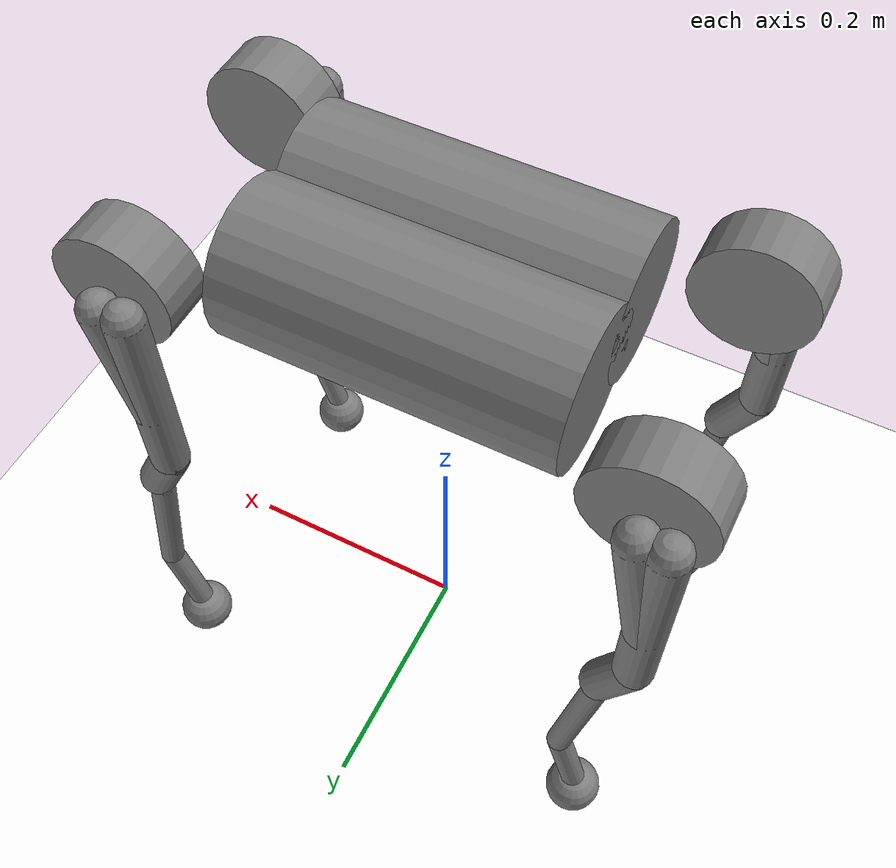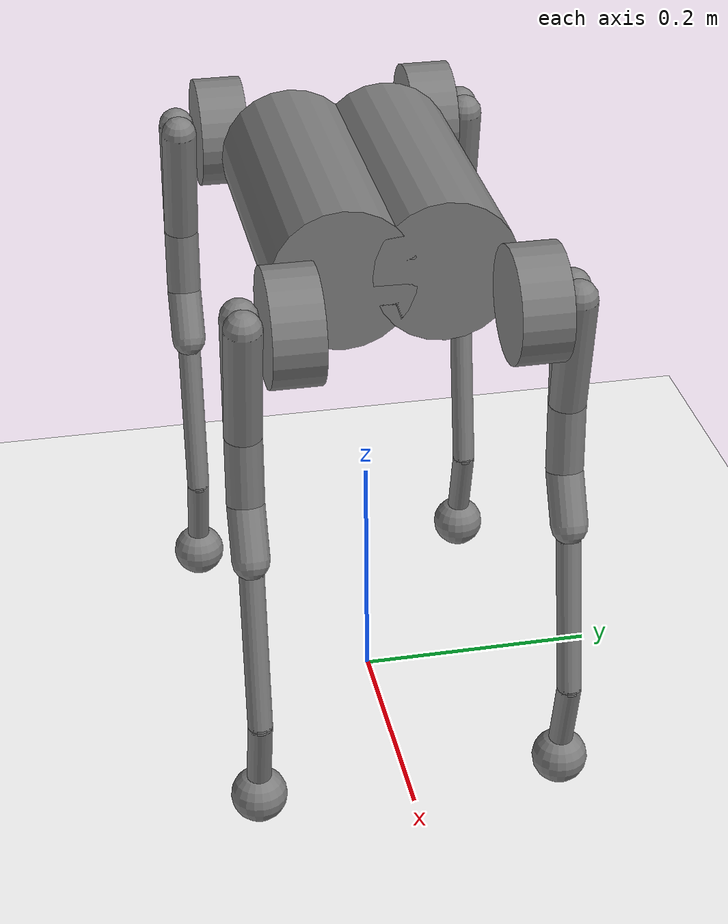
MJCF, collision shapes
<mujoco model="go1 scene">
  <compiler angle="radian" meshdir="../assets/"/>

  <option timestep="0.004" iterations="1" ls_iterations="5">
    <flag eulerdamp="disable"/>
  </option>

  <size nkey="5"/>

  <visual>
    <global azimuth="120" elevation="-20"/>
    <quality shadowsize="8192"/>
    <headlight ambient="0.2 0.2 0.2" diffuse="0.8 0.8 0.8" specular="1 1 1"/>
    <map force="0.01"/>
    <scale forcewidth="0.3" contactwidth="0.5" contactheight="0.2"/>
    <rgba force="1 0 0 1"/>
  </visual>

  <statistic meansize="0.04" extent="0.8" center="0 0 0.1"/>

  <default>
    <default class="go1">
      <joint armature="0.005" damping="0.5"/>
      <geom condim="1"/>
      <general forcerange="-23.7 23.7" biastype="affine" gainprm="35" biasprm="0 -35"/>
      <default class="abduction">
        <joint range="-0.863 0.863" frictionloss="0.3"/>
      </default>
      <default class="hip">
        <joint range="-0.686 4.501" frictionloss="0.3"/>
      </default>
      <default class="knee">
        <joint range="-2.818 -0.888" frictionloss="1"/>
        <general forcerange="-35.55 35.55"/>
      </default>
      <default class="visual">
        <geom type="mesh" contype="0" conaffinity="0" group="2" material="dark"/>
      </default>
      <default class="collision">
        <geom type="capsule" group="3"/>
        <default class="hip_left1">
          <geom size="0.046 0.02 0" type="cylinder"/>
        </default>
        <default class="hip_left2">
          <geom size="0.031 0.02 0" type="cylinder"/>
        </default>
        <default class="hip_left3">
          <geom size="0.046 0.02 0" type="cylinder"/>
        </default>
        <default class="hip_right1">
          <geom size="0.046 0.02 0" type="cylinder"/>
        </default>
        <default class="hip_right2">
          <geom size="0.031 0.02 0" type="cylinder"/>
        </default>
        <default class="hip_right3">
          <geom size="0.046 0.02 0" type="cylinder"/>
        </default>
        <default class="thigh1">
          <geom size="0.015 0 0"/>
        </default>
        <default class="thigh2">
          <geom size="0.015 0 0"/>
        </default>
        <default class="thigh3">
          <geom size="0.015 0 0"/>
        </default>
        <default class="calf1">
          <geom size="0.01 0 0"/>
        </default>
        <default class="calf2">
          <geom size="0.01 0 0"/>
        </default>
        <default class="foot">
          <geom size="0.023 0 0" type="sphere" condim="3" solimp="0.9 0.95 0.023"/>
        </default>
      </default>
    </default>
  </default>

  <custom>
    <numeric name="max_contact_points" size="1" data="30"/>
    <numeric name="max_geom_pairs" size="1" data="12"/>
  </custom>

  <asset>
    <texture type="skybox" builtin="gradient" rgb1="1 1 1" rgb2="1 1 1" width="800" height="4800"/>
    <texture type="2d" name="groundplane" builtin="checker" mark="edge" rgb1="1 1 1" rgb2="1 1 1" width="300" height="300"/>
    <material name="dark" rgba="0.2 0.2 0.2 1"/>
    <material name="groundplane" texture="groundplane" texuniform="true" texrepeat="5 5"/>
    <mesh name="trunk" class="go1" content_type="model/stl" file="trunk.stl"/>
    <mesh name="hip" class="go1" content_type="model/stl" file="hip.stl"/>
    <mesh name="thigh_mirror" class="go1" content_type="model/stl" file="thigh_mirror.stl"/>
    <mesh name="calf" class="go1" content_type="model/stl" file="calf.stl"/>
    <mesh name="thigh" class="go1" content_type="model/stl" file="thigh.stl"/>
  </asset>

  <worldbody>
    <geom name="floor" size="0 0 0.01" type="plane" conaffinity="0" priority="1" friction="0.6" material="groundplane"/>
    <light name="spotlight" target="trunk" pos="3 0 4" dir="0 0 -1" mode="targetbodycom"/>
    <body name="trunk" childclass="go1" pos="0 0 0.445">
      <inertial pos="0.0223 0.002 -0.0005" quat="-0.00342088 0.705204 0.000106698 0.708996" mass="5.204" diaginertia="0.0716565 0.0630105 0.0168101"/>
      <joint type="free" limited="false" actuatorfrclimited="false" armature="0" damping="0"/>
      <geom class="visual" mesh="trunk"/>
      <geom class="collision" size="0.058 0.125" pos="0 -0.04 0" quat="0.707107 0 0.707107 0" type="cylinder"/>
      <geom class="collision" size="0.058 0.125" pos="0 0.04 0" quat="0.707107 0 0.707107 0" type="cylinder"/>
      <site name="head" pos="0.3 0 0" size="0.02" group="5" rgba="1 0 0 1"/>
      <site name="imu" pos="-0.01592 -0.06659 -0.00617" group="5"/>
      <camera name="track" pos="0.846 -1.3 0.316" quat="0.791164 0.554139 0.148485 0.211997" mode="trackcom"/>
      <camera name="top" pos="-1 0 1" quat="0.653281 0.270598 -0.270598 -0.653281" mode="trackcom"/>
      <camera name="side" pos="0 -1 0.3" quat="0.850651 0.525731 0 0" mode="trackcom"/>
      <camera name="back" pos="-1 0 0.3" quat="0.601501 0.371748 -0.371748 -0.601501" mode="trackcom"/>
      <body name="FR_hip" pos="0.1881 -0.04675 0">
        <inertial pos="-0.0049166 0.00762615 -8.865e-05" quat="0.507341 0.514169 0.495027 0.482891" mass="0.68" diaginertia="0.000734064 0.000468438 0.000398719"/>
        <joint name="FR_hip_joint" class="abduction" pos="0 0 0" axis="1 0 0"/>
        <geom class="visual" mesh="hip"/>
        <geom name="fr_hip" class="hip_right1" pos="0 -0.045 0" quat="0.707107 0.707107 0 0"/>
        <body name="FR_thigh" pos="0 -0.08 0">
          <inertial pos="-0.00304722 0.019315 -0.0305004" quat="0.65243 -0.0272313 0.0775126 0.753383" mass="1.009" diaginertia="0.00478717 0.00460903 0.000709268"/>
          <joint name="FR_thigh_joint" class="hip" pos="0 0 0" axis="0 1 0"/>
          <geom class="visual" mesh="thigh_mirror"/>
          <geom name="fr_thigh1" class="thigh1" size="0.015 0.08" pos="-0.02 0 -0.08"/>
          <geom name="fr_thigh2" class="thigh2" size="0.015 0.0509902" pos="-0.01 0 -0.05" quat="0.995133 0 0.0985376 0"/>
          <geom name="fr_thigh3" class="thigh3" size="0.015 0.0223607" pos="-0.01 0 -0.18" quat="0.973249 0 -0.229753 0"/>
          <body name="FR_calf" pos="0 0 -0.213">
            <inertial pos="0.00429862 0.000976676 -0.146197" quat="0.691246 0.00357467 0.00511118 0.722592" mass="0.195862" diaginertia="0.00149767 0.00148468 3.58427e-05"/>
            <joint name="FR_calf_joint" class="knee" pos="0 0 0" axis="0 1 0"/>
            <geom class="visual" mesh="calf"/>
            <geom name="fr_calf1" class="calf1" size="0.01 0.0657647" pos="0.01 0 -0.065" quat="0.997089 0 -0.0762506 0"/>
            <geom name="fr_calf2" class="calf2" size="0.01 0.0364005" pos="0.01 0 -0.165" quat="0.990334 0 0.138701 0"/>
            <geom name="FR" class="foot" pos="0 0 -0.213"/>
            <site name="FR" pos="0 0 -0.213" size="0.023" group="5"/>
          </body>
        </body>
      </body>
      <body name="FL_hip" pos="0.1881 0.04675 0">
        <inertial pos="-0.0049166 -0.00762615 -8.865e-05" quat="0.482891 0.495027 0.514169 0.507341" mass="0.68" diaginertia="0.000734064 0.000468438 0.000398719"/>
        <joint name="FL_hip_joint" class="abduction" pos="0 0 0" axis="1 0 0"/>
        <geom class="visual" mesh="hip"/>
        <geom name="fl_hip" class="hip_left1" pos="0 0.045 0" quat="0.707107 0.707107 0 0"/>
        <body name="FL_thigh" pos="0 0.08 0">
          <inertial pos="-0.00304722 -0.019315 -0.0305004" quat="0.753383 0.0775126 -0.0272313 0.65243" mass="1.009" diaginertia="0.00478717 0.00460903 0.000709268"/>
          <joint name="FL_thigh_joint" class="hip" pos="0 0 0" axis="0 1 0"/>
          <geom class="visual" mesh="thigh"/>
          <geom name="fl_thigh1" class="thigh1" size="0.015 0.08" pos="-0.02 0 -0.08"/>
          <geom name="fl_thigh2" class="thigh2" size="0.015 0.0509902" pos="-0.01 0 -0.05" quat="0.995133 0 0.0985376 0"/>
          <geom name="fl_thigh3" class="thigh3" size="0.015 0.0223607" pos="-0.01 0 -0.18" quat="0.973249 0 -0.229753 0"/>
          <body name="FL_calf" pos="0 0 -0.213">
            <inertial pos="0.00429862 0.000976676 -0.146197" quat="0.691246 0.00357467 0.00511118 0.722592" mass="0.195862" diaginertia="0.00149767 0.00148468 3.58427e-05"/>
            <joint name="FL_calf_joint" class="knee" pos="0 0 0" axis="0 1 0"/>
            <geom class="visual" mesh="calf"/>
            <geom name="fl_calf1" class="calf1" size="0.01 0.0657647" pos="0.01 0 -0.065" quat="0.997089 0 -0.0762506 0"/>
            <geom name="fl_calf2" class="calf2" size="0.01 0.0364005" pos="0.01 0 -0.165" quat="0.990334 0 0.138701 0"/>
            <geom name="FL" class="foot" pos="0 0 -0.213"/>
            <site name="FL" pos="0 0 -0.213" size="0.023" group="5"/>
          </body>
        </body>
      </body>
      <body name="RR_hip" pos="-0.1881 -0.04675 0">
        <inertial pos="0.0049166 0.00762615 -8.865e-05" quat="0.495027 0.482891 0.507341 0.514169" mass="0.68" diaginertia="0.000734064 0.000468438 0.000398719"/>
        <joint name="RR_hip_joint" class="abduction" pos="0 0 0" axis="1 0 0"/>
        <geom class="visual" quat="0 0 0 -1" mesh="hip"/>
        <geom name="rr_hip" class="hip_right1" pos="0 -0.045 0" quat="0.707107 0.707107 0 0"/>
        <body name="RR_thigh" pos="0 -0.08 0">
          <inertial pos="-0.00304722 0.019315 -0.0305004" quat="0.65243 -0.0272313 0.0775126 0.753383" mass="1.009" diaginertia="0.00478717 0.00460903 0.000709268"/>
          <joint name="RR_thigh_joint" class="hip" pos="0 0 0" axis="0 1 0"/>
          <geom class="visual" mesh="thigh_mirror"/>
          <geom name="rr_thigh1" class="thigh1" size="0.015 0.08" pos="-0.02 0 -0.08"/>
          <geom name="rr_thigh2" class="thigh2" size="0.015 0.0509902" pos="-0.01 0 -0.05" quat="0.995133 0 0.0985376 0"/>
          <geom name="rr_thigh3" class="thigh3" size="0.015 0.0223607" pos="-0.01 0 -0.18" quat="0.973249 0 -0.229753 0"/>
          <body name="RR_calf" pos="0 0 -0.213">
            <inertial pos="0.00429862 0.000976676 -0.146197" quat="0.691246 0.00357467 0.00511118 0.722592" mass="0.195862" diaginertia="0.00149767 0.00148468 3.58427e-05"/>
            <joint name="RR_calf_joint" class="knee" pos="0 0 0" axis="0 1 0"/>
            <geom class="visual" mesh="calf"/>
            <geom name="rr_calf1" class="calf1" size="0.01 0.0657647" pos="0.01 0 -0.065" quat="0.997089 0 -0.0762506 0"/>
            <geom name="rr_calf2" class="calf2" size="0.01 0.0364005" pos="0.01 0 -0.165" quat="0.990334 0 0.138701 0"/>
            <geom name="RR" class="foot" pos="0 0 -0.213"/>
            <site name="RR" pos="0 0 -0.213" size="0.023" group="5"/>
          </body>
        </body>
      </body>
      <body name="RL_hip" pos="-0.1881 0.04675 0">
        <inertial pos="0.0049166 -0.00762615 -8.865e-05" quat="0.514169 0.507341 0.482891 0.495027" mass="0.68" diaginertia="0.000734064 0.000468438 0.000398719"/>
        <joint name="RL_hip_joint" class="abduction" pos="0 0 0" axis="1 0 0"/>
        <geom class="visual" quat="0 0 1 0" mesh="hip"/>
        <geom name="rl_hip" class="hip_left1" pos="0 0.045 0" quat="0.707107 0.707107 0 0"/>
        <body name="RL_thigh" pos="0 0.08 0">
          <inertial pos="-0.00304722 -0.019315 -0.0305004" quat="0.753383 0.0775126 -0.0272313 0.65243" mass="1.009" diaginertia="0.00478717 0.00460903 0.000709268"/>
          <joint name="RL_thigh_joint" class="hip" pos="0 0 0" axis="0 1 0"/>
          <geom class="visual" mesh="thigh"/>
          <geom name="rl_thigh1" class="thigh1" size="0.015 0.08" pos="-0.02 0 -0.08"/>
          <geom name="rl_thigh2" class="thigh2" size="0.015 0.0509902" pos="-0.01 0 -0.05" quat="0.995133 0 0.0985376 0"/>
          <geom name="rl_thigh3" class="thigh3" size="0.015 0.0223607" pos="-0.01 0 -0.18" quat="0.973249 0 -0.229753 0"/>
          <body name="RL_calf" pos="0 0 -0.213">
            <inertial pos="0.00429862 0.000976676 -0.146197" quat="0.691246 0.00357467 0.00511118 0.722592" mass="0.195862" diaginertia="0.00149767 0.00148468 3.58427e-05"/>
            <joint name="RL_calf_joint" class="knee" pos="0 0 0" axis="0 1 0"/>
            <geom class="visual" mesh="calf"/>
            <geom name="rl_calf1" class="calf1" size="0.01 0.0657647" pos="0.01 0 -0.065" quat="0.997089 0 -0.0762506 0"/>
            <geom name="rl_calf2" class="calf2" size="0.01 0.0364005" pos="0.01 0 -0.165" quat="0.990334 0 0.138701 0"/>
            <geom name="RL" class="foot" pos="0 0 -0.213"/>
            <site name="RL" pos="0 0 -0.213" size="0.023" group="5"/>
          </body>
        </body>
      </body>
    </body>
  </worldbody>

  <actuator>
    <general name="FR_hip" class="abduction" joint="FR_hip_joint" ctrlrange="-0.863 0.863"/>
    <general name="FR_thigh" class="hip" joint="FR_thigh_joint" ctrlrange="-0.686 4.501"/>
    <general name="FR_calf" class="knee" joint="FR_calf_joint" ctrlrange="-2.818 -0.888"/>
    <general name="FL_hip" class="abduction" joint="FL_hip_joint" ctrlrange="-0.863 0.863"/>
    <general name="FL_thigh" class="hip" joint="FL_thigh_joint" ctrlrange="-0.686 4.501"/>
    <general name="FL_calf" class="knee" joint="FL_calf_joint" ctrlrange="-2.818 -0.888"/>
    <general name="RR_hip" class="abduction" joint="RR_hip_joint" ctrlrange="-0.863 0.863"/>
    <general name="RR_thigh" class="hip" joint="RR_thigh_joint" ctrlrange="-0.686 4.501"/>
    <general name="RR_calf" class="knee" joint="RR_calf_joint" ctrlrange="-2.818 -0.888"/>
    <general name="RL_hip" class="abduction" joint="RL_hip_joint" ctrlrange="-0.863 0.863"/>
    <general name="RL_thigh" class="hip" joint="RL_thigh_joint" ctrlrange="-0.686 4.501"/>
    <general name="RL_calf" class="knee" joint="RL_calf_joint" ctrlrange="-2.818 -0.888"/>
  </actuator>

  <sensor>
    <gyro site="imu" name="gyro"/>
    <velocimeter site="imu" name="local_linvel"/>
    <accelerometer site="imu" name="accelerometer"/>
    <framepos objtype="site" objname="imu" name="position"/>
    <framezaxis objtype="site" objname="imu" name="upvector"/>
    <framexaxis objtype="site" objname="imu" name="forwardvector"/>
    <framelinvel objtype="site" objname="imu" name="global_linvel"/>
    <frameangvel objtype="site" objname="imu" name="global_angvel"/>
    <framequat objtype="site" objname="imu" name="orientation"/>
    <framelinvel objtype="site" objname="FR" name="FR_global_linvel"/>
    <framelinvel objtype="site" objname="FL" name="FL_global_linvel"/>
    <framelinvel objtype="site" objname="RR" name="RR_global_linvel"/>
    <framelinvel objtype="site" objname="RL" name="RL_global_linvel"/>
    <framepos objtype="site" objname="FR" reftype="site" refname="imu" name="FR_pos"/>
    <framepos objtype="site" objname="FL" reftype="site" refname="imu" name="FL_pos"/>
    <framepos objtype="site" objname="RR" reftype="site" refname="imu" name="RR_pos"/>
    <framepos objtype="site" objname="RL" reftype="site" refname="imu" name="RL_pos"/>
    <framepos objtype="site" objname="head" name="head_pos"/>
  </sensor>

  <keyframe>
    <key name="home" qpos="0 0 0.278 1 0 0 0 0.1 0.9 -1.8 -0.1 0.9 -1.8 0.1 0.9 -1.8 -0.1 0.9 -1.8" ctrl="0.1 0.9 -1.8 -0.1 0.9 -1.8 0.1 0.9 -1.8 -0.1 0.9 -1.8"/>
    <key name="home_higher" qpos="0 0 0.31 1 0 0 0 0 0.82 -1.63 0 0.82 -1.63 0 0.82 -1.63 0 0.82 -1.63" ctrl="0 0.82 -1.63 0 0.82 -1.63 0 0.82 -1.63 0 0.82 -1.63"/>
    <key name="pre_recovery" qpos="-0.0318481 -0.000215369 0.0579031 1 -2.70738e-05 6.06169e-05 0.000231261 -0.352275 1.18554 -2.80738 0.360892 1.1806 -2.80281 -0.381197 1.16812 -2.79123 0.391054 1.1622 -2.78576" ctrl="-0.352275 1.18554 -2.80738 0.360892 1.1806 -2.80281 -0.381197 1.16812 -2.79123 0.391054 1.1622 -2.78576"/>
    <key name="footstand" qpos="0 0 0.54 0.707107 0 -0.707107 0 0 0.82 -1.6 0 0.82 -1.68 0 1.82 -1.16 0 1.82 -1.16" ctrl="0 0.82 -1.6 0 0.82 -1.68 0 1.82 -1.16 0 1.82 -1.16"/>
    <key name="handstand" qpos="0 0 0.54 0.707107 0 0.707107 0 0 -0.686 -1.16 0 -0.686 -1.16 0 1.7 -1.853 0 1.7 -1.853" ctrl="0 -0.686 -1.16 0 -0.686 -1.16 0 1.7 -1.853 0 1.7 -1.853"/>
  </keyframe>
</mujoco>
